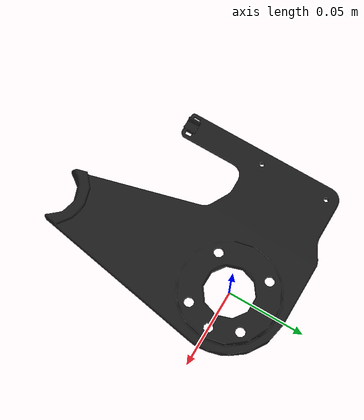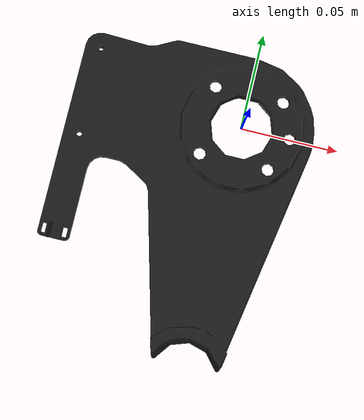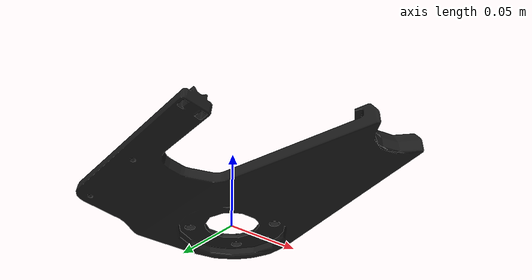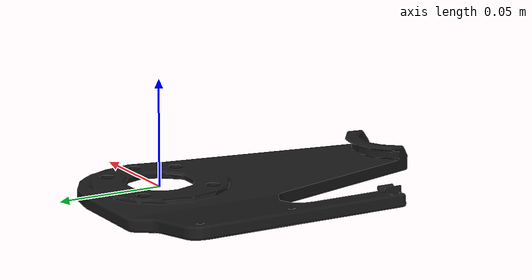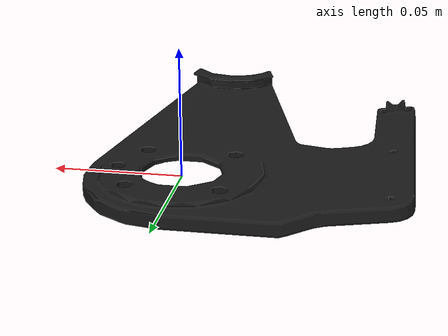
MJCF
<mujoco model="ur_realsense_short_mount_tube">
  <default>
    <default class="visual">
      <geom group="2" type="mesh" contype="0" conaffinity="0"/>
    </default>
    <default class="collision">
      <geom group="3" type="mesh"/>
    </default>
  </default>
  <asset>
    <material name="mtl_ur_realsense_short_mount_tube" specular="0.20000000000000004" shininess="1.0" rgba="0.10196078 0.10196078 0.10196078 1.0"/>
    <mesh file="ur_realsense_short_mount_tube.obj"/>
  </asset>
  <worldbody>
    <body name="ur_realsense_short_mount_tube">
      <geom material="mtl_ur_realsense_short_mount_tube" mesh="ur_realsense_short_mount_tube" class="visual"/>
      <geom mesh="ur_realsense_short_mount_tube" class="collision"/>
    </body>
  </worldbody>
</mujoco>
